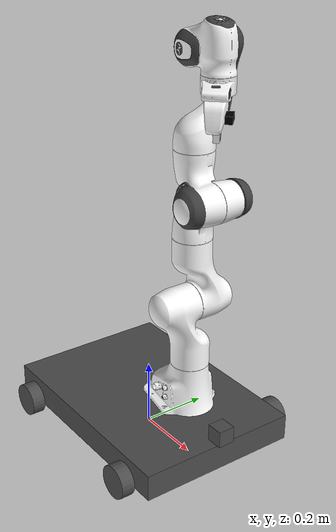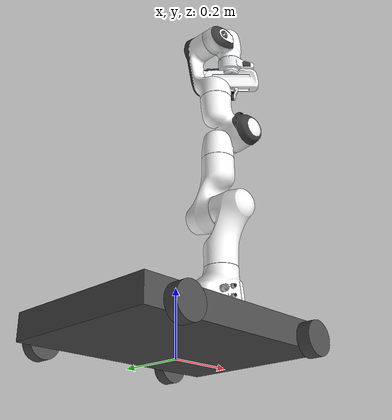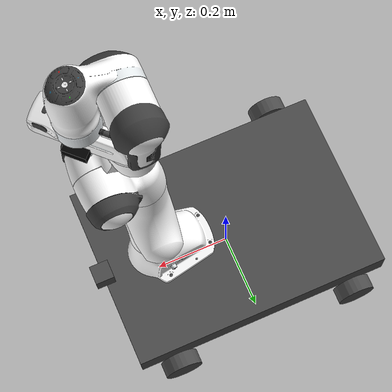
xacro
<?xml version="1.0"?>
<robot xmlns:xacro="http://www.ros.org/wiki/xacro" name="mobile_panda">

  <xacro:include filename="simple_base.xacro" />

  <xacro:include filename="panda_fixed_only.urdf" />

  <joint name="base_to_arm" type="fixed">
    <parent link="base_link" />
    <child link="panda_link0" />
    <origin xyz="0.2 0 0.1" rpy="0 0 0" />
  </joint>

</robot>

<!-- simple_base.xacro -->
<robot xmlns:xacro="http://www.ros.org/wiki/xacro" name="simple_base">

  <material name="grey"><color rgba="0.3 0.3 0.3 1"/></material>

  <link name="base_footprint"/>
  <joint name="base_footprint_joint" type="fixed">
    <parent link="base_footprint"/>
    <child link="base_link"/>
    <origin xyz="0 0 0.07" rpy="0 0 0"/>
  </joint>

  <link name="base_link">
    <visual>
      <geometry><box size="0.7 0.5 0.08"/></geometry> <material name="grey"/>
    </visual>
    <collision>
      <geometry><box size="0.7 0.5 0.08"/></geometry>
    </collision>
    <inertial>
      <mass value="80.0"/>
      <origin xyz="0 0 -0.1" rpy="0 0 0"/>
      <inertia ixx="3.0" ixy="0" ixz="0" iyy="4.0" iyz="0" izz="5.0"/>
    </inertial>
  </link>

  <xacro:macro name="wheel" params="prefix x_reflect y_reflect">
    <link name="${prefix}_wheel">
      <visual>
        <geometry><cylinder radius="0.05" length="0.04"/></geometry>
        <material name="grey"/>
      </visual>
      <collision>
        <geometry><cylinder radius="0.05" length="0.04"/></geometry>
      </collision>
      <inertial>
        <mass value="2.0"/>
        <inertia ixx="0.002" ixy="0" ixz="0" iyy="0.002" iyz="0" izz="0.002"/>
      </inertial>
    </link>

    <joint name="${prefix}_wheel_joint" type="continuous">
      <parent link="base_link"/>
      <child link="${prefix}_wheel"/>
      <origin xyz="${x_reflect*0.25} ${y_reflect*0.28} -0.02" rpy="-1.5708 0 0"/>
      <axis xyz="0 0 1"/>
    </joint>
  </xacro:macro>

  <xacro:wheel prefix="fl" x_reflect="1"  y_reflect="1" />
  <xacro:wheel prefix="fr" x_reflect="1"  y_reflect="-1" />
  <xacro:wheel prefix="rl" x_reflect="-1" y_reflect="1" />
  <xacro:wheel prefix="rr" x_reflect="-1" y_reflect="-1" />

  <link name="base_camera_link">
    <visual>
      <geometry><box size="0.05 0.05 0.05"/></geometry>
      <material name="grey"/>
    </visual>
  </link>

  <joint name="base_camera_joint" type="fixed">
    <parent link="base_link"/>
    <child link="base_camera_link"/>
    <origin xyz="0.35 0 0.08" rpy="0 0 0"/> </joint>

  <gazebo reference="base_camera_link">
    <sensor name="base_camera" type="camera">
      <camera>
        <horizontal_fov>1.089</horizontal_fov>
        <image>
          <width>640</width>
          <height>480</height>
          <format>R8G8B8</format>
        </image>
        <clip>
          <near>0.05</near>
          <far>8.0</far>
        </clip>
      </camera>
      <always_on>1</always_on>
      <update_rate>30</update_rate>
      <visualize>true</visualize> <topic>/base_camera/image_raw</topic> <gz_frame_id>base_camera_link</gz_frame_id>
    </sensor>
  </gazebo>
  <gazebo>
    <plugin filename="gz-sim-diff-drive-system" name="gz::sim::systems::DiffDrive">
      <left_joint>fl_wheel_joint</left_joint>
      <left_joint>rl_wheel_joint</left_joint>
      <right_joint>fr_wheel_joint</right_joint>
      <right_joint>rr_wheel_joint</right_joint>
      <wheel_separation>0.56</wheel_separation>
      <wheel_diameter>0.1</wheel_diameter> <max_wheel_torque>2000</max_wheel_torque>
      <max_linear_acceleration>0.5</max_linear_acceleration>
      <topic>/model/mobile_panda/cmd_vel</topic>
      <odom_topic>/model/mobile_panda/odometry</odom_topic>
      <frame_id>odom</frame_id>
      <child_frame_id>base_footprint</child_frame_id>
    </plugin>
  </gazebo>
</robot>

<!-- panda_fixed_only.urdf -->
<robot name="panda">

  <link name="panda_link0">
    <visual>
      <geometry>
        <mesh filename="package://panda_description/meshes/visual/link0.dae"/>
      </geometry>
    </visual>
    <collision>
      <geometry>
        <mesh filename="package://panda_description/meshes/collision/link0.stl"/>
      </geometry>
    </collision>
    <inertial>
      <origin rpy="0 0 0" xyz="-0.041018 -0.00014 0.049974"/>
      <mass value="0.629769"/>
      <inertia ixx="0.00315" ixy="8.2904E-7" ixz="0.00015" iyy="0.00388" iyz="8.2299E-6" izz="0.004285"/>
    </inertial>
  </link>

  <link name="panda_link1">
    <visual>
      <geometry>
        <mesh filename="package://panda_description/meshes/visual/link1.dae"/>
      </geometry>
    </visual>
    <collision>
      <geometry>
        <mesh filename="package://panda_description/meshes/collision/link1.stl"/>
      </geometry>
    </collision>
    <inertial>
      <origin rpy="0 0 0" xyz="0.003875 0.002081 -0.04762"/>
      <mass value="4.970684"/>
      <inertia ixx="0.70337" ixy="-0.000139" ixz="0.006772" iyy="0.70661" iyz="0.019169" izz="0.009117"/>
    </inertial>
  </link>

  <joint name="panda_joint1" type="revolute">
    <safety_controller k_position="100.0" k_velocity="40.0" soft_lower_limit="-2.8973" soft_upper_limit="2.8973"/>
    <origin rpy="0 0 0" xyz="0 0 0.333"/>
    <parent link="panda_link0"/>
    <child link="panda_link1"/>
    <axis xyz="0 0 1"/>
    <limit effort="87" lower="-2.9671" upper="2.9671" velocity="2.3925"/>
    <dynamics D="1" K="7000" damping="0.003" friction="0.0" mu_coulomb="0" mu_viscous="16"/>
  </joint>

  <link name="panda_link2">
    <visual>
      <geometry>
        <mesh filename="package://panda_description/meshes/visual/link2.dae"/>
      </geometry>
    </visual>
    <collision>
      <geometry>
        <mesh filename="package://panda_description/meshes/collision/link2.stl"/>
      </geometry>
    </collision>
    <inertial>
      <origin rpy="0 0 0" xyz="-0.003141 -0.02872  0.003495"/>
      <mass value="0.646926"/>
      <inertia ixx="0.007962" ixy="-3.925E-3" ixz="1.0254E-2" iyy="2.811E-2" iyz="7.04E-4" izz="2.5995E-2"/>
    </inertial>
  </link>

  <joint name="panda_joint2" type="revolute">
    <safety_controller k_position="100.0" k_velocity="40.0" soft_lower_limit="-1.7628" soft_upper_limit="1.7628"/>
    <origin rpy="-1.57079632679 0 0" xyz="0 0 0"/>
    <parent link="panda_link1"/>
    <child link="panda_link2"/>
    <axis xyz="0 0 1"/>
    <limit effort="87" lower="-1.8326" upper="1.8326" velocity="2.3925"/>
    <dynamics D="1" K="7000" damping="0.003" friction="0.0" mu_coulomb="0" mu_viscous="16"/>
  </joint>

  <link name="panda_link3">
    <visual>
      <geometry>
        <mesh filename="package://panda_description/meshes/visual/link3.dae"/>
      </geometry>
    </visual>
    <collision>
      <geometry>
        <mesh filename="package://panda_description/meshes/collision/link3.stl"/>
      </geometry>
    </collision>
    <inertial>
      <origin rpy="0 0 0" xyz="2.7518E-2 3.9252E-2 -6.6502E-2"/>
      <mass value="3.228604"/>
      <inertia ixx="3.7242E-2" ixy="-4.761E-3" ixz="-1.1396E-2" iyy="3.6155E-2" iyz="-1.2805E-2" izz="1.083E-2"/>
    </inertial>
  </link>

  <joint name="panda_joint3" type="revolute">
    <safety_controller k_position="100.0" k_velocity="40.0" soft_lower_limit="-2.8973" soft_upper_limit="2.8973"/>
    <origin rpy="1.57079632679 0 0" xyz="0 -0.316 0"/>
    <parent link="panda_link2"/>
    <child link="panda_link3"/>
    <axis xyz="0 0 1"/>
    <limit effort="87" lower="-2.9671" upper="2.9671" velocity="2.3925"/>
    <dynamics D="1" K="7000" damping="0.003" friction="0.0" mu_coulomb="0" mu_viscous="16"/>
  </joint>

  <link name="panda_link4">
    <visual>
      <geometry>
        <mesh filename="package://panda_description/meshes/visual/link4.dae"/>
      </geometry>
    </visual>
    <collision>
      <geometry>
        <mesh filename="package://panda_description/meshes/collision/link4.stl"/>
      </geometry>
    </collision>
    <inertial>
      <origin rpy="0 0 0" xyz="-5.317E-2 1.04419E-1 2.7454E-2"/>
      <mass value="3.587895"/>
      <inertia ixx="2.5853E-2" ixy="7.796E-3" ixz="-1.332E-3" iyy="1.9552E-2" iyz="8.641E-3" izz="2.8323E-2"/>
    </inertial>
  </link>

  <joint name="panda_joint4" type="revolute">
    <safety_controller k_position="100.0" k_velocity="40.0" soft_lower_limit="-3.0718" soft_upper_limit="0.0175"/>
    <origin rpy="1.57079632679 0 0" xyz="0.0825 0 0"/>
    <parent link="panda_link3"/>
    <child link="panda_link4"/>
    <axis xyz="0 0 1"/>
    <limit effort="87" lower="-3.1416" upper="0.0873" velocity="2.3925"/>
    <dynamics D="1" K="7000" damping="0.003" friction="0.0" mu_coulomb="0" mu_viscous="16"/>
  </joint>

  <link name="panda_link5">
    <visual>
      <geometry>
        <mesh filename="package://panda_description/meshes/visual/link5.dae"/>
      </geometry>
    </visual>
    <collision>
      <geometry>
        <mesh filename="package://panda_description/meshes/collision/link5.stl"/>
      </geometry>
    </collision>
    <inertial>
      <origin rpy="0 0 0" xyz="-1.1953E-2 4.1065E-2 -3.8437E-2"/>
      <mass value="1.225946"/>
      <inertia ixx="3.5549E-2" ixy="-2.117E-3" ixz="-4.037E-3" iyy="2.9474E-2" iyz="2.29E-4" izz="8.627E-3"/>
    </inertial>
  </link>

  <joint name="panda_joint5" type="revolute">
    <safety_controller k_position="100.0" k_velocity="40.0" soft_lower_limit="-2.8973" soft_upper_limit="2.8973"/>
    <origin rpy="-1.57079632679 0 0" xyz="-0.0825 0.384 0"/>
    <parent link="panda_link4"/>
    <child link="panda_link5"/>
    <axis xyz="0 0 1"/>
    <limit effort="12" lower="-2.9671" upper="2.9671" velocity="2.8710"/>
    <dynamics D="1" K="7000" damping="0.003" friction="0.0" mu_coulomb="0" mu_viscous="16"/>
  </joint>

  <link name="panda_link6">
    <visual>
      <geometry>
        <mesh filename="package://panda_description/meshes/visual/link6.dae"/>
      </geometry>
    </visual>
    <collision>
      <geometry>
        <mesh filename="package://panda_description/meshes/collision/link6.stl"/>
      </geometry>
    </collision>
    <inertial>
      <origin rpy="0 0 0" xyz="6.0149E-2 -1.4117E-2 -1.0517E-2"/>
      <mass value="1.666555"/>
      <inertia ixx="1.964E-3" ixy="1.09E-4" ixz="-1.158E-3" iyy="4.354E-3" iyz="3.41E-4" izz="5.433E-3"/>
    </inertial>
  </link>

  <joint name="panda_joint6" type="revolute">
    <safety_controller k_position="100.0" k_velocity="40.0" soft_lower_limit="-0.0175" soft_upper_limit="3.7525"/>
    <origin rpy="1.57079632679 0 0" xyz="0 0 0"/>
    <parent link="panda_link5"/>
    <child link="panda_link6"/>
    <axis xyz="0 0 1"/>
    <limit effort="12" lower="-0.0873" upper="3.8223" velocity="2.8710"/>
    <dynamics D="1" K="7000" damping="0.003" friction="0.0" mu_coulomb="0" mu_viscous="16"/>
  </joint>

  <link name="panda_link7">
    <visual>
      <geometry>
        <mesh filename="package://panda_description/meshes/visual/link7.dae"/>
      </geometry>
    </visual>
    <collision>
      <geometry>
        <mesh filename="package://panda_description/meshes/collision/link7.stl"/>
      </geometry>
    </collision>
    <inertial>
      <origin rpy="0 0 0" xyz="1.0517E-2 -4.252E-3 6.1597E-2"/>
      <mass value="7.35522E-1"/>
      <inertia ixx="1.2516E-2" ixy="-4.28E-4" ixz="-1.19E-3" iyy="1.0027E-2" iyz="-7.41E-4" izz="4.815E-3"/>
    </inertial>
  </link>

  <joint name="panda_joint7" type="revolute">
    <safety_controller k_position="100.0" k_velocity="40.0" soft_lower_limit="-2.8973" soft_upper_limit="2.8973"/>
    <origin rpy="1.57079632679 0 0" xyz="0.088 0 0"/>
    <parent link="panda_link6"/>
    <child link="panda_link7"/>
    <axis xyz="0 0 1"/>
    <limit effort="12" lower="-2.9671" upper="2.9671" velocity="2.8710"/>
    <dynamics D="1" K="7000" damping="0.003" friction="0.0" mu_coulomb="0" mu_viscous="16"/>
  </joint>

  <link name="panda_link8"/>
  <joint name="panda_joint8" type="fixed">
    <origin rpy="0 0 0" xyz="0 0 0.107"/>
    <parent link="panda_link7"/>
    <child link="panda_link8"/>
  </joint>

  <joint name="panda_hand_joint" type="fixed">
    <parent link="panda_link8"/>
    <child link="panda_hand"/>
    <origin rpy="0 0 -0.785398163397" xyz="0 0 0"/>
  </joint>

  <link name="panda_hand">
    <visual>
      <geometry>
        <mesh filename="package://panda_description/meshes/visual/hand.dae"/>
      </geometry>
    </visual>
    <collision>
      <geometry>
        <mesh filename="package://panda_description/meshes/collision/hand.stl"/>
      </geometry>
    </collision>
    <inertial>
      <origin rpy="0 0 0" xyz="-0.01 0 0.03"/>
      <mass value="0.73"/>
      <inertia ixx="0.001" ixy="0" ixz="0" iyy="0.0025" iyz="0" izz="0.0017"/>
    </inertial>
  </link>

  <link name="panda_leftfinger">
    <visual>
      <geometry>
        <mesh filename="package://panda_description/meshes/visual/finger.dae"/>
      </geometry>
    </visual>
    <collision>
      <geometry>
        <mesh filename="package://panda_description/meshes/collision/finger.stl"/>
      </geometry>
    </collision>
    <inertial>
      <origin rpy="0 0 0" xyz="0 0 0"/>
      <mass value="0.015"/>
      <inertia ixx="2.375E-6" ixy="0" ixz="0" iyy="2.375E-6" iyz="0" izz="7.5E-7"/>
    </inertial>
  </link>

  <link name="panda_rightfinger">
    <visual>
      <origin rpy="0 0 3.14159265359" xyz="0 0 0"/>
      <geometry>
        <mesh filename="package://panda_description/meshes/visual/finger.dae"/>
      </geometry>
    </visual>
    <collision>
      <origin rpy="0 0 3.14159265359" xyz="0 0 0"/>
      <geometry>
        <mesh filename="package://panda_description/meshes/collision/finger.stl"/>
      </geometry>
    </collision>
    <inertial>
      <origin rpy="0 0 0" xyz="0 0 0"/>
      <mass value="0.15"/>
      <inertia ixx="2.375E-6" ixy="0" ixz="0" iyy="2.375E-6" iyz="0" izz="7.5E-7"/>
    </inertial>
  </link>

  <joint name="panda_finger_joint1" type="prismatic">
    <parent link="panda_hand"/>
    <child link="panda_leftfinger"/>
    <origin rpy="0 0 0" xyz="0 0 0.0584"/>
    <axis xyz="0 1 0"/>
    <limit effort="20" lower="0.0" upper="0.04" velocity="0.2"/>
    <dynamics damping="0.3"/>
  </joint>

  <joint name="panda_finger_joint2" type="prismatic">
    <parent link="panda_hand"/>
    <child link="panda_rightfinger"/>
    <origin rpy="0 0 0" xyz="0 0 0.0584"/>
    <axis xyz="0 -1 0"/>
    <limit effort="20" lower="0.0" upper="0.04" velocity="0.2"/>
    <dynamics damping="0.3"/>
  </joint>

  <ros2_control name="PandaGazeboSystem" type="system">
    <hardware>
      <plugin>gz_ros2_control/GazeboSimSystem</plugin>
    </hardware>

    <joint name="panda_joint1">
      <command_interface name="position"/>
      <state_interface name="position"> <param name="initial_value">0.0</param> </state_interface>
      <state_interface name="velocity"/>
    </joint>
    <joint name="panda_joint2">
      <command_interface name="position"/>
      <state_interface name="position"> <param name="initial_value">0.0</param> </state_interface>
      <state_interface name="velocity"/>
    </joint>
    <joint name="panda_joint3">
      <command_interface name="position"/>
      <state_interface name="position"> <param name="initial_value">0.0</param> </state_interface>
      <state_interface name="velocity"/>
    </joint>
    <joint name="panda_joint4">
      <command_interface name="position"/>
      <state_interface name="position"> <param name="initial_value">-1.57</param> </state_interface>
      <state_interface name="velocity"/>
    </joint>
    <joint name="panda_joint5">
      <command_interface name="position"/>
      <state_interface name="position"> <param name="initial_value">0.0</param> </state_interface>
      <state_interface name="velocity"/>
    </joint>
    <joint name="panda_joint6">
      <command_interface name="position"/>
      <state_interface name="position"> <param name="initial_value">1.57</param> </state_interface>
      <state_interface name="velocity"/>
    </joint>
    <joint name="panda_joint7">
      <command_interface name="position"/>
      <state_interface name="position"> <param name="initial_value">0.785</param> </state_interface>
      <state_interface name="velocity"/>
    </joint>

    <joint name="panda_finger_joint1">
      <command_interface name="position"/>
      <state_interface name="position"> <param name="initial_value">0.0</param> </state_interface>
      <state_interface name="velocity"/>
    </joint>
    <joint name="panda_finger_joint2">
      <command_interface name="position"/>
      <state_interface name="position"> <param name="initial_value">0.0</param> </state_interface>
      <state_interface name="velocity"/>
    </joint>
  </ros2_control>

  <gazebo>
      <plugin filename="gz_ros2_control-system" name="gz_ros2_control::GazeboSimROS2ControlPlugin">
        <parameters>/home/q/panda_ws/src/panda_description/config/panda_controllers.yaml</parameters>
      </plugin>
    </gazebo>
  <joint name="camera_joint" type="fixed">
    <parent link="panda_hand"/>
    <child link="camera_link"/>
    <origin xyz="0.03 0 0.05" rpy="0.0 -1.57 0.0"/>
  </joint>

  <link name="camera_link">
    <visual>
      <geometry>
        <box size="0.02 0.05 0.02"/>
      </geometry>
      <material name="black">
        <color rgba="0 0 0 1"/>
      </material>
    </visual>
    <collision>
      <geometry>
        <box size="0.02 0.05 0.02"/>
      </geometry>
    </collision>
    <inertial>
      <mass value="0.1"/>
      <inertia ixx="0.0001" ixy="0" ixz="0" iyy="0.0001" iyz="0" izz="0.0001"/>
    </inertial>
  </link>

  <joint name="camera_optical_joint" type="fixed">
    <parent link="camera_link"/>
    <child link="camera_link_optical"/>
    <origin xyz="0 0 0" rpy="-1.5708 0 -1.5708"/>
  </joint>
  <link name="camera_link_optical"/>

  <gazebo reference="camera_link">
    <sensor name="panda_camera" type="camera">
      <camera>
        <horizontal_fov>1.21</horizontal_fov> <image>
          <width>640</width>
          <height>480</height>
          <format>R8G8B8</format>
        </image>
        <clip>
          <near>0.02</near>
          <far>10.0</far>
        </clip>
      </camera>
      <always_on>1</always_on>
      <update_rate>30</update_rate>
      <visualize>true</visualize> <topic>camera/image_raw</topic> <gz_frame_id>camera_link_optical</gz_frame_id>
    </sensor>
  </gazebo>

  <gazebo>
    <plugin filename="gz-sim-sensors-system" name="gz::sim::systems::Sensors">
      <render_engine>ogre2</render_engine>
    </plugin>
  </gazebo>
</robot>
